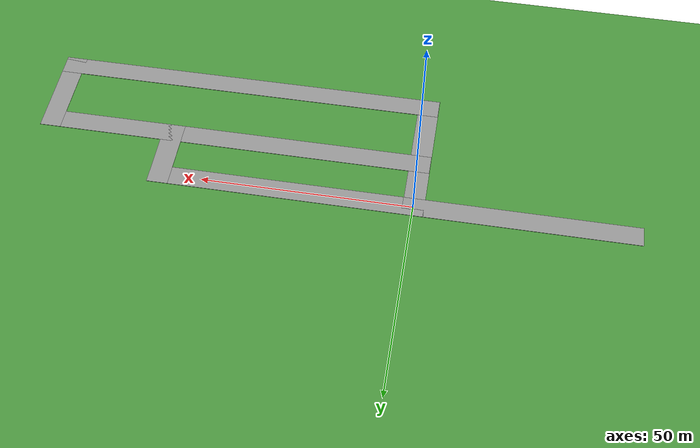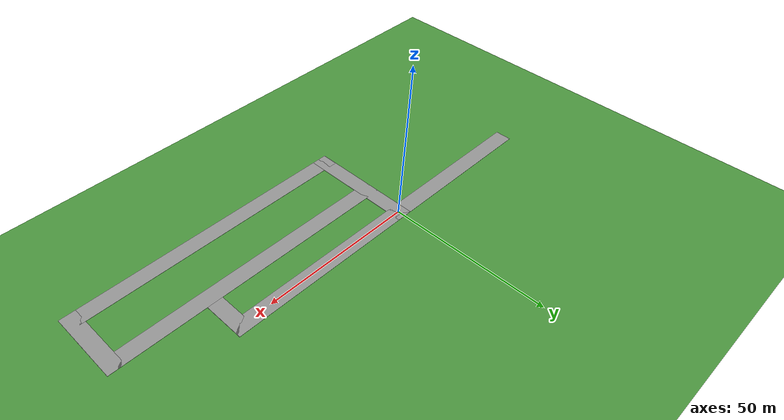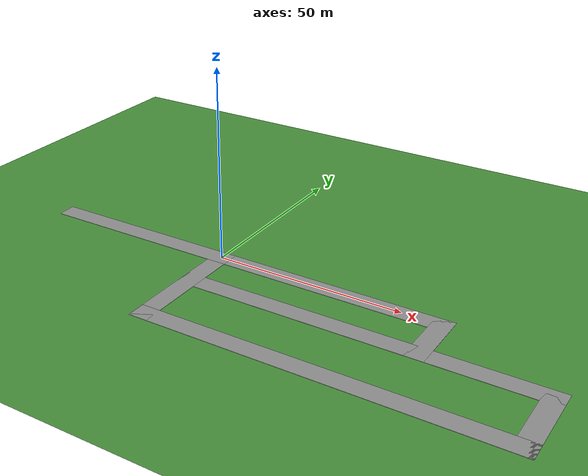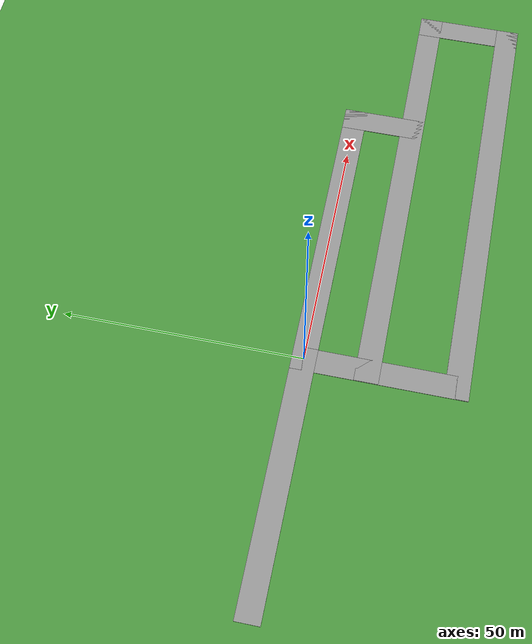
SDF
<sdf version="1.4">
 <world name="default">
  <light name="sun" type="directional">
   <pose>0 0 10 0 -0 0</pose>
   <diffuse>0.8 0.8 0.8 1</diffuse>
   <specular>0.2 0.2 0.2 1</specular>
   <attenuation>
    <range>10000</range>
    <constant>0.9</constant>
    <linear>0.01</linear>
    <quadratic>0.001</quadratic>
   </attenuation>
   <direction>0 0 -1</direction>
  </light>
  <model name="ground_plane">
   <static>1</static>
   <link name="link">
    <collision name="collision">
     <geometry><plane><normal>0 0 1</normal><size>10000 10000</size></plane></geometry>
     <surface><friction><ode><mu>100</mu><mu2>50</mu2></ode></friction></surface>
    </collision>
    <visual name="visual">
     <cast_shadows>0</cast_shadows>
     <geometry><plane><normal>0 0 1</normal><size>10000 10000</size></plane></geometry>
     <material>
      <script>
       <uri>model://ds_grass_background/materials/scripts</uri>
       <uri>model://ds_grass_background/materials/textures</uri>
       <name>GrassBackground</name>
      </script>
     </material>
    </visual>
    <velocity_decay><linear>0</linear><angular>0</angular></velocity_decay>
   </link>
  </model>
  <physics type="ode">
   <max_step_size>0.001</max_step_size>
   <real_time_factor>1</real_time_factor>
   <real_time_update_rate>1000</real_time_update_rate>
   <gravity>0 0 -9.8</gravity>
  </physics>
  <scene>
   <ambient>0.4 0.4 0.4 1</ambient>
   <background>0 0.9 0.9 1</background>
   <shadows>1</shadows>
   <grid>0</grid>
  </scene>
  <spherical_coordinates>
   <surface_model>EARTH_WGS84</surface_model>
   <latitude_deg>0</latitude_deg>
   <longitude_deg>0</longitude_deg>
   <elevation>0</elevation>
   <heading_deg>0</heading_deg>
  </spherical_coordinates>
  <model name="BuildingDefaultName">
   <link name="Wall_0">
    <collision name="Wall_0_Collision">
     <geometry><box><size>65 5 0.1</size></box></geometry>
     <pose>0 0 0.05 0 -0 0</pose>
    </collision>
    <visual name="Wall_0_Visual">
     <pose>0 0 0.05 0 -0 0</pose>
     <geometry><box><size>65 5 0.1</size></box></geometry>
     <material>
      <script><uri>file://media/materials/scripts/gazebo.material</uri><name>Gazebo/Grey</name></script>
     </material>
    </visual>
    <velocity_decay><linear>0</linear><angular>0</angular></velocity_decay>
    <pose>30 0 0 0 -0 0</pose>
   </link>
   <link name="Wall_10">
    <collision name="Wall_10_Collision">
     <geometry><box><size>23 5 0.1</size></box></geometry>
     <pose>0 0 0.05 0 -0 0</pose>
    </collision>
    <visual name="Wall_10_Visual">
     <pose>0 0 0.05 0 -0 0</pose>
     <geometry><box><size>23 5 0.1</size></box></geometry>
     <material>
      <script><uri>file://media/materials/scripts/gazebo.material</uri><name>Gazebo/Grey</name></script>
     </material>
    </visual>
    <velocity_decay><linear>0</linear><angular>0</angular></velocity_decay>
    <pose>90 -22 0 0 0 -1.5708</pose>
   </link>
   <link name="Wall_12">
    <collision name="Wall_12_Collision">
     <geometry><box><size>55 5 0.1</size></box></geometry>
     <pose>0 0 0.05 0 -0 0</pose>
    </collision>
    <visual name="Wall_12_Visual">
     <pose>0 0 0.05 0 -0 0</pose>
     <geometry><box><size>55 5 0.1</size></box></geometry>
     <material>
      <script><uri>file://media/materials/scripts/gazebo.material</uri><name>Gazebo/Grey</name></script>
     </material>
    </visual>
    <velocity_decay><linear>0</linear><angular>0</angular></velocity_decay>
    <pose>-25 0 0 0 -0 0</pose>
   </link>
   <link name="Wall_2">
    <collision name="Wall_2_Collision">
     <geometry><box><size>95 5 0.1</size></box></geometry>
     <pose>0 0 0.05 0 -0 0</pose>
    </collision>
    <visual name="Wall_2_Visual">
     <pose>0 0 0.05 0 -0 0</pose>
     <geometry><box><size>95 5 0.1</size></box></geometry>
     <material>
      <script><uri>file://media/materials/scripts/gazebo.material</uri><name>Gazebo/Grey</name></script>
     </material>
    </visual>
    <velocity_decay><linear>0</linear><angular>0</angular></velocity_decay>
    <pose>45 -31 0 0 -0 0</pose>
   </link>
   <link name="Wall_4">
    <collision name="Wall_4_Collision">
     <geometry><box><size>36 5 0.1</size></box></geometry>
     <pose>0 0 0.05 0 -0 0</pose>
    </collision>
    <visual name="Wall_4_Visual">
     <pose>0 0 0.05 0 -0 0</pose>
     <geometry><box><size>36 5 0.1</size></box></geometry>
     <material>
      <script><uri>file://media/materials/scripts/gazebo.material</uri><name>Gazebo/Grey</name></script>
     </material>
    </visual>
    <velocity_decay><linear>0</linear><angular>0</angular></velocity_decay>
    <pose>-0.093576 -15.5 0 0 0 -1.5708</pose>
   </link>
   <link name="Wall_6">
    <collision name="Wall_6_Collision">
     <geometry><box><size>95 5 0.1</size></box></geometry>
     <pose>0 0 0.05 0 -0 0</pose>
    </collision>
    <visual name="Wall_6_Visual">
     <pose>0 0 0.05 0 -0 0</pose>
     <geometry><box><size>95 5 0.1</size></box></geometry>
     <material>
      <script><uri>file://media/materials/scripts/gazebo.material</uri><name>Gazebo/Grey</name></script>
     </material>
    </visual>
    <velocity_decay><linear>0</linear><angular>0</angular></velocity_decay>
    <pose>45 -13 0 0 -0 0</pose>
   </link>
   <link name="Wall_8">
    <collision name="Wall_8_Collision">
     <geometry><box><size>18 5 0.1</size></box></geometry>
     <pose>0 0 0.05 0 -0 0</pose>
    </collision>
    <visual name="Wall_8_Visual">
     <pose>0 0 0.05 0 -0 0</pose>
     <geometry><box><size>18 5 0.1</size></box></geometry>
     <material>
      <script><uri>file://media/materials/scripts/gazebo.material</uri><name>Gazebo/Grey</name></script>
     </material>
    </visual>
    <velocity_decay><linear>0</linear><angular>0</angular></velocity_decay>
    <pose>60 -6.5 0 0 0 -1.5708</pose>
   </link>
   <static>1</static>
  </model>
 </world>
</sdf>
